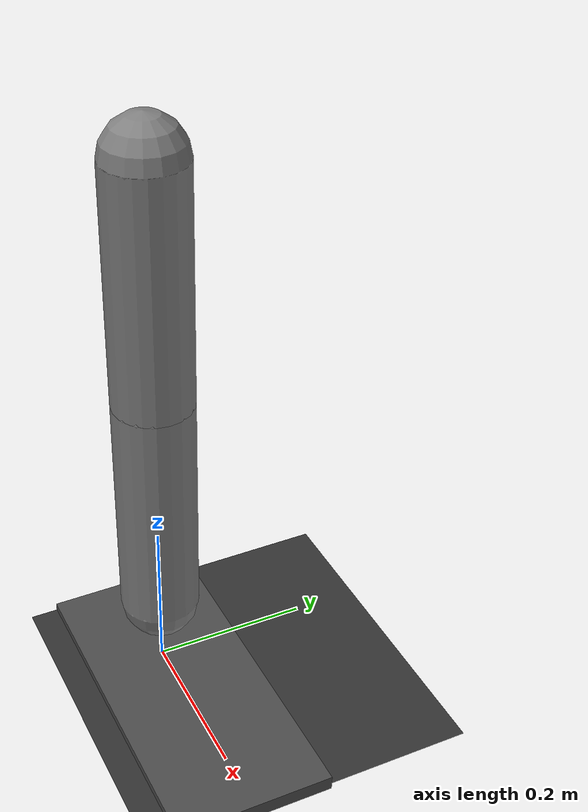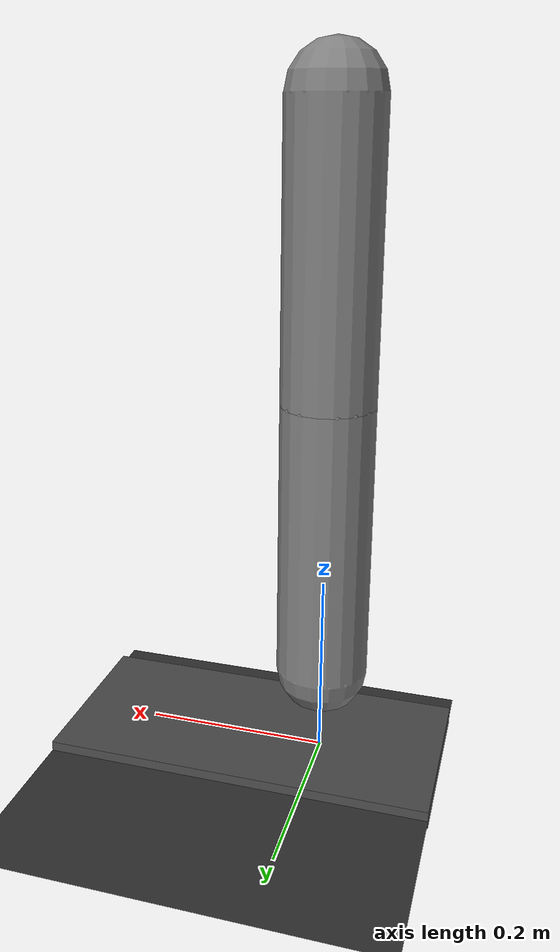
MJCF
<mujoco model="2d_hopper">
  <option gravity="0 0 -9.81"/>
  <default>
    <geom friction="1 0.005 0.0001" condim="3"/>
    <motor ctrllimited="true" ctrlrange="-200 200"/>
  </default>

  <worldbody>
    <geom type="plane" size="5 5 0.1" rgba="0.2 0.2 0.2 1"/>
    <geom type="box" size="5 0.1 0.01" pos="0 0 0" rgba="0.3 0.3 0.3 1"/>

    <!-- Base body with constrained 2D joints -->
    <body name="hopper_base" pos="0 0 0.1">
      <joint name="slide_x" type="slide" axis="1 0 0"/>
      <joint name="slide_z" type="slide" axis="0 0 1"/>
      <joint name="rot_y" type="hinge" axis="0 1 0"/>
      <geom type="capsule" fromto="0 0 0 0 0 0.3" size="0.05"/>

      <!-- Upper body -->
      <body name="torso" pos="0 0 0.3">
        <joint name="hip" type="hinge" axis="0 1 0" limited="false"/>
        <geom type="capsule" fromto="0 0 0 0 0 0.3" size="0.05"/>
      </body>
    </body>
  </worldbody>

  <actuator>
    <motor joint="hip" gear="1"/>
  </actuator>
</mujoco>
